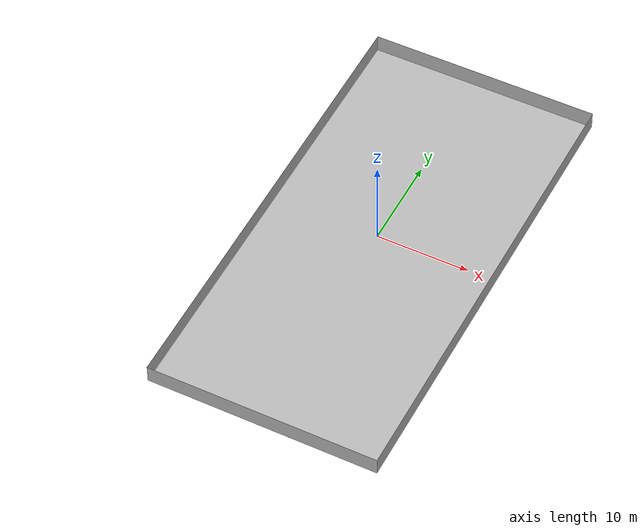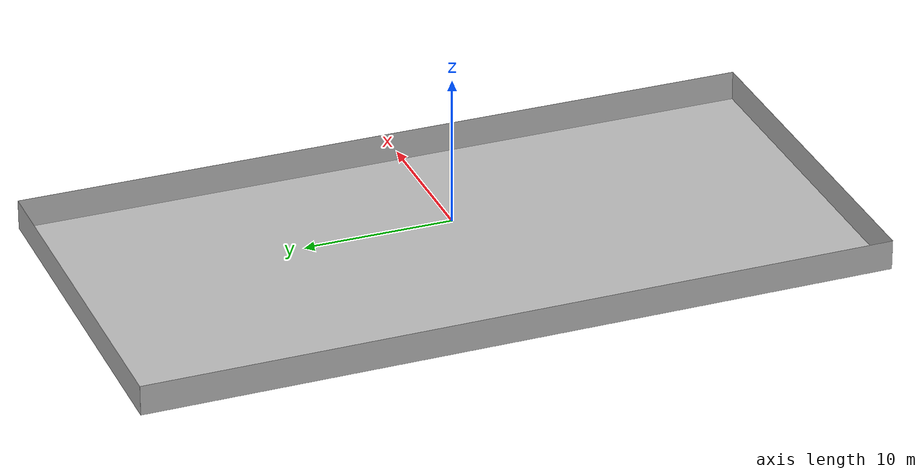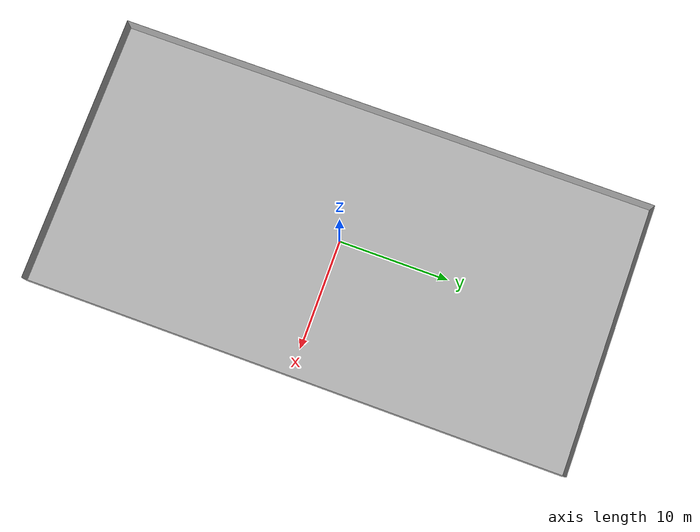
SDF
<?xml version="1.0" ?>
<sdf version="1.6">
  <world name="pool">
	<!-- Setting the physics and scene -->
    <physics name="default_physics" default="true" type="ode">
      <max_step_size>0.002</max_step_size>
      <real_time_factor>1</real_time_factor>
      <real_time_update_rate>500</real_time_update_rate>
    </physics>
    <scene>
      <ambient>0.01 0.01 0.01 1.0</ambient>
      <sky>
        <clouds>
          <speed>12</speed>
        </clouds>
      </sky>
      <shadows>1</shadows>
    </scene>

    <!-- Lights: Global -->
    <light type="directional" name="sun1">
      <pose>20 0 100 0 0 0</pose>
      <diffuse>1 1 1 1</diffuse>
      <specular>1 1 1 1</specular>
      <direction>0.3 0.3 -1</direction>
      <cast_shadows>false</cast_shadows>
    </light>
    <light type="directional" name="sun_diffuse">
      <pose>-20 0 -100 0 0 0</pose>
      <diffuse>0.46 0.46 0.46 1</diffuse>
      <specular>0 0 0 1</specular>
      <direction>-0.3 -0.3 -1</direction>
      <cast_shadows>false</cast_shadows>
    </light>

    <!-- Lights: Focus -->
	<light name='gate_focus_1' type='point'>
      <pose frame=''>11.1512 9.32795 1 0 -0 0</pose>
      <diffuse>0.5 0.5 0.5 1</diffuse>
      <specular>0.1 0.1 0.1 1</specular>
      <attenuation>
        <range>20</range>
        <constant>0.5</constant>
        <linear>0.01</linear>
        <quadratic>0.001</quadratic>
      </attenuation>
      <cast_shadows>0</cast_shadows>
      <direction>0 0 -1</direction>
    </light>
    <light name='gate_focus_2' type='point'>
      <pose frame=''>11.0884 8.42621 1 0 -0 0</pose>
      <diffuse>0.5 0.5 0.5 1</diffuse>
      <specular>0.1 0.1 0.1 1</specular>
      <attenuation>
        <range>20</range>
        <constant>0.5</constant>
        <linear>0.01</linear>
        <quadratic>0.001</quadratic>
      </attenuation>
      <cast_shadows>0</cast_shadows>
      <direction>0 0 -1</direction>
    </light>
    <light name='gate_focus_3' type='point'>
      <pose frame=''>3.57644 5.66953 1 0 -0 0</pose>
      <diffuse>0.5 0.5 0.5 1</diffuse>
      <specular>0.1 0.1 0.1 1</specular>
      <attenuation>
        <range>20</range>
        <constant>0.5</constant>
        <linear>0.01</linear>
        <quadratic>0.001</quadratic>
      </attenuation>
      <cast_shadows>0</cast_shadows>
      <direction>0 0 -1</direction>
    </light>

	<!-- Ocean -->
	<include>
		<uri>model://pool</uri>
	</include>

    <!-- Plugins -->
  <plugin name="freefloating_gazebo_fluid" filename="libfreefloating_gazebo_fluid.so">
        <descriptionParam>robot_description</descriptionParam>
        <fluidTopic>current</fluidTopic>
        <alwaysOn>true</alwaysOn>
        <surface>0 0 0</surface>
        <updateRate>.001</updateRate>
    </plugin>

	<!-- Camera -->
	<gui fullscreen='0'>
      <camera name='user_camera'>
          <pose frame=''>15.2893 5.66608 1.25266 0 0.254431 -3.03368</pose>
        <view_controller>orbit</view_controller>
        <projection_type>perspective</projection_type>
      </camera>
    </gui>

  </world>
</sdf>

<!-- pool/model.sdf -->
<sdf version="1.6">
    <model name='pool'>
      <static>1</static>
      <link name='pool_base'>
        <visual name='pool_floor'>
          <cast_shadows>1</cast_shadows>
          <pose frame=''>0 0 -2.01 0 -0 0</pose>
          <geometry>
            <box>
              <size>25 50 0.01</size>
            </box>
          </geometry>
          <material>
            <script>
              <uri>file://models/pool/materials/scripts/pool.material</uri>
              <name>pool/floor</name>
            </script>
            <emissive>0.6 0.6 0.6 1</emissive>
          </material>
        </visual>
        <collision name='pool_floor'>
          <pose frame=''>0 0 -2.01 0 -0 0</pose>
          <geometry>
            <box>
              <size>25 50 0.01</size>
            </box>
          </geometry>
          <max_contacts>1000</max_contacts>
          <surface>
            <contact>
              <ode/>
            </contact>
            <bounce/>
            <friction>
              <torsional>
                <ode/>
              </torsional>
              <ode/>
            </friction>
          </surface>
        </collision>
       <self_collide>0</self_collide>
        <enable_wind>0</enable_wind>
        <kinematic>0</kinematic>
      </link>

      <link name='north_link'>
		<visual name='north'>
			<pose>12.5 0 -1 0 -1.57079 0</pose>
          <geometry>
            <box>
              <size>2.01 50 0.01</size>
            </box>
          </geometry>
          <material>
            <script>
              <uri>file://models/pool/materials/scripts/pool.material</uri>
              <name>pool/wall</name>
            </script>
            <emissive>0.6 0.6 0.6 1</emissive>
          </material>
         </visual>
          <collision name='north'>
			  <pose>12.5 0 -1 0 -1.57079 0</pose>
          <geometry>
            <box>
              <size>2.01 50 0.01</size>
            </box>
          </geometry>
          <max_contacts>40</max_contacts>
          <surface>
            <contact>
              <ode/>
            </contact>
            <bounce/>
            <friction>
              <torsional>
                <ode/>
              </torsional>
              <ode/>
            </friction>
          </surface>
        </collision>
          <self_collide>0</self_collide>
          <enable_wind>0</enable_wind>
          <kinematic>0</kinematic>
        </link>
      <joint type="fixed" name="north_link_joint">
        <child>north_link</child>
        <parent>pool_base</parent>
      </joint>

      <link name='south_link'>
		<visual name='south'>
			<pose>-12.5 0 -1 0 -1.57079 0</pose>
          <geometry>
            <box>
              <size>2.01 50 0.01</size>
            </box>
          </geometry>
          <material>
            <script>
              <uri>file://models/pool/materials/scripts/pool.material</uri>
              <name>pool/wall</name>
            </script>
            <emissive>0.6 0.6 0.6 1</emissive>
          </material>
         </visual>
          <collision name='south'>
			  <pose>-12.5 0 -1 0 -1.57079 0</pose>
          <geometry>
            <box>
              <size>2.01 50 0.01</size>
            </box>
          </geometry>
          <max_contacts>40</max_contacts>
          <surface>
            <contact>
              <ode/>
            </contact>
            <bounce/>
            <friction>
              <torsional>
                <ode/>
              </torsional>
              <ode/>
            </friction>
          </surface>
        </collision>
          <self_collide>0</self_collide>
          <enable_wind>0</enable_wind>
          <kinematic>0</kinematic>
        </link>
      <joint type="fixed" name="south_link_joint">
        <child>south_link</child>
        <parent>pool_base</parent>
      </joint>

      <link name='east_link'>
		<visual name='east'>
		 <pose>0 25 -1 -1.5708 0 0</pose>
          <geometry>
            <box>
              <size>25 2.01 0.01</size>
            </box>
          </geometry>
          <material>
            <script>
              <uri>file://models/pool/materials/scripts/pool.material</uri>
              <name>pool/wall</name>
            </script>
            <emissive>0.6 0.6 0.6 1</emissive>
          </material>
         </visual>
          <collision name='east'>
		  <pose>0 25 -1 -1.5708 0 0</pose>
          <geometry>
            <box>
              <size>25 2.01 0.01</size>
            </box>
          </geometry>
          <max_contacts>40</max_contacts>
          <surface>
            <contact>
              <ode/>
            </contact>
            <bounce/>
            <friction>
              <torsional>
                <ode/>
              </torsional>
              <ode/>
            </friction>
          </surface>
        </collision>
          <self_collide>0</self_collide>
          <enable_wind>0</enable_wind>
          <kinematic>0</kinematic>
        </link>
      <joint type="fixed" name="east_link_joint">
        <child>east_link</child>
        <parent>pool_base</parent>
      </joint>

      <link name='west_link'>
		<visual name='west'>
		 <pose>0 -25 -1 -1.5708 0 0</pose>
          <geometry>
            <box>
              <size>25 2.01 0.01</size>
            </box>
          </geometry>
          <material>
            <script>
              <uri>file://models/pool/materials/scripts/pool.material</uri>
              <name>pool/wall</name>
            </script>
            <emissive>0.6 0.6 0.6 1</emissive>
          </material>
         </visual>
          <collision name='west'>
		  <pose>0 -25 -1 -1.5708 0 0</pose>
          <geometry>
            <box>
              <size>25 2.01 0.01</size>
            </box>
          </geometry>
          <max_contacts>40</max_contacts>
          <surface>
            <contact>
              <ode/>
            </contact>
            <bounce/>
            <friction>
              <torsional>
                <ode/>
              </torsional>
              <ode/>
            </friction>
          </surface>
        </collision>
          <self_collide>0</self_collide>
          <enable_wind>0</enable_wind>
          <kinematic>0</kinematic>
        </link>
      <joint type="fixed" name="west_link_joint">
        <child>west_link</child>
        <parent>pool_base</parent>
      </joint>
      <pose frame=''>0 0 0 0 -0 0</pose>
    </model>
</sdf>
